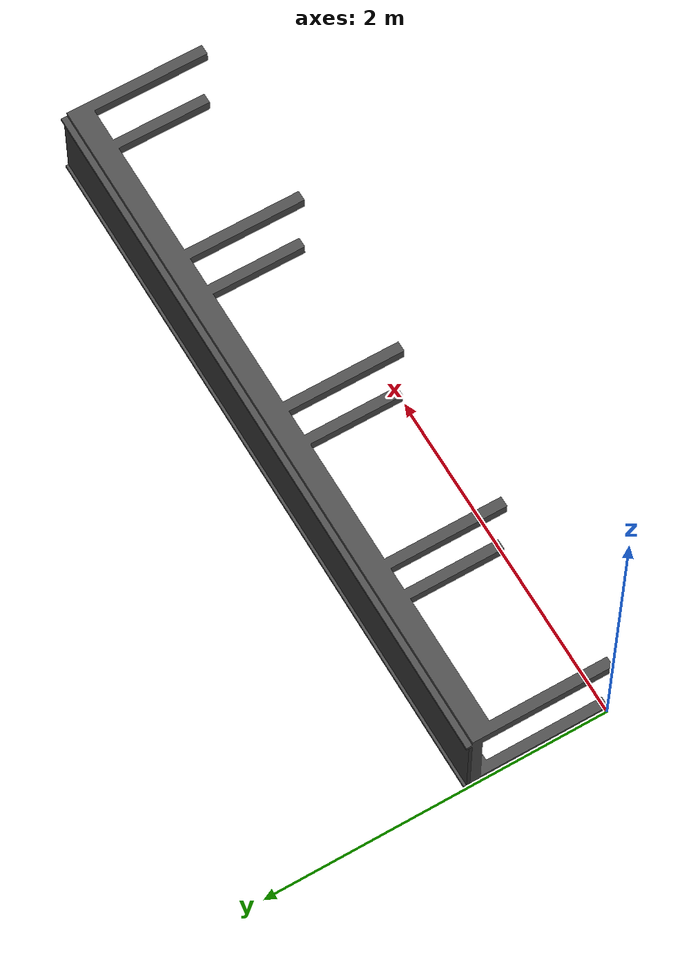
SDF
<?xml version="1.0" ?>
<sdf version="1.7">
    <model name="ConveyorChassis">
        <static>true</static>
        <link name="chassis">
            <inertial>
                <mass>120.14395</mass>
                <inertia>
                    <ixx>0.095329</ixx>
                    <ixy>0</ixy>
                    <ixz>0</ixz>
                    <iyy>0.381317</iyy>
                    <iyz>0</iyz>
                    <izz>0.476646</izz>
                </inertia>
            </inertial>
            <visual name="visual">
                <geometry>
                    <mesh>
                        <scale>1e-3 1e-3 1e-3</scale>
                        <uri>model://ConveyorChassis/meshes/ConveyorChassis.stl</uri>
                    </mesh>
                </geometry>
                <material>
                    <ambient>0.3 0.3 0.3 1</ambient>
                    <diffuse>0.3 0.3 0.3 1</diffuse>
                    <specular>0.3 0.3 0.3 1</specular>
                </material>
            </visual>
            <collision name="collision">
                <geometry>
                    <mesh>
                        <scale>1e-3 1e-3 1e-3</scale>
                        <uri>model://ConveyorChassis/meshes/ConveyorChassis.stl</uri>
                    </mesh>
                </geometry>
            </collision>
        </link>

        <!-- 原本履帶表面 -->
        <link name="belt_surface">
        <static>false</static>
            <pose>0 0.83 0.05025 0 0 0</pose>
            <inertial>
                <mass>1.0</mass>
                <inertia>
                    <ixx>0.01</ixx>
                    <iyy>0.01</iyy>
                    <izz>0.01</izz>
                    <ixy>0</ixy>
                    <ixz>0</ixz>
                    <iyz>0</iyz>
                </inertia>
            </inertial>
            <visual name="visual">
                <pose>0 0 0 1.57 0 0</pose>
                <geometry>
                    <mesh>
                        <uri>model://ConveyorBelt/meshes/ConveyorBelt_belt_surface.stl</uri>
                        <scale>0.001 0.001 0.001</scale>
                    </mesh>
                </geometry>
                <material>
                    <ambient>0.2 0.2 0.2 1</ambient>
                    <diffuse>0.2 0.2 0.2 1</diffuse>
                </material>
            </visual>
            <collision name="collision">
                <geometry>
                    <box>
                        <size>4.1 0.4795 0.02</size>
                    </box>
                </geometry>
                <surface>
                    <friction>
                    <ode>
                        <mu>100</mu>
                        <mu2>100</mu2>
                    </ode>
                    <torsional>
                        <coefficient>1000</coefficient>
                        <patch_radius>0.1</patch_radius>
                    </torsional>
                    </friction>
                </surface>
            </collision>
        </link>

        <joint name="belt_joint" type="prismatic">
            <parent>chassis</parent>
            <child>belt_surface</child>
            <axis>
                <xyz>0 1 0</xyz>
                <limit>
                    <lower>-10.0</lower>
                    <upper>10.0</upper>
                </limit>
            </axis>
        </joint>

        <plugin filename="libros2_conveyorbelt_plugin.so" name="ros2_conveyorbelt_plugin">
            <ros>
                <namespace></namespace>
            </ros>
            <max_velocity>1</max_velocity>
            <publish_rate>1000</publish_rate>
        </plugin>

    </model>
</sdf>
